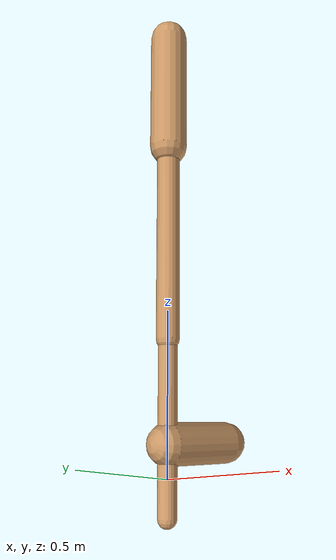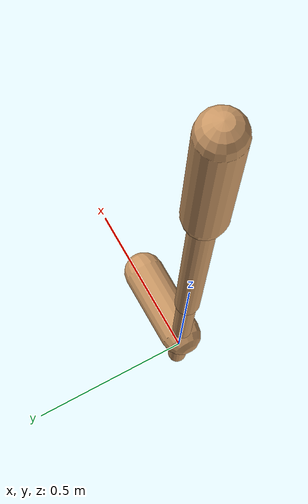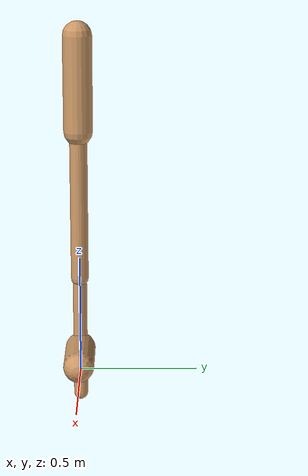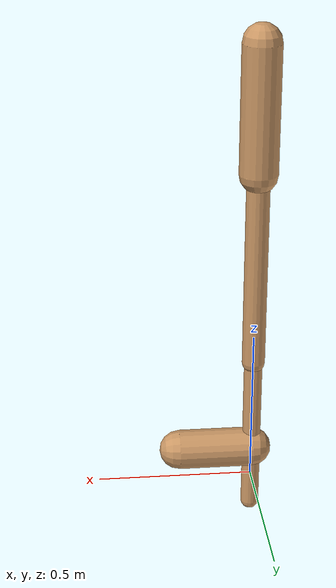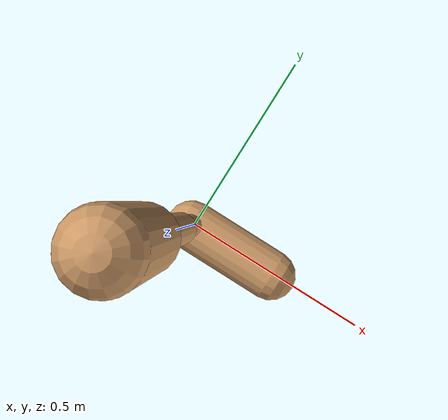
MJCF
<mujoco model="walker2d">
  <compiler angle="degree" coordinate="global" inertiafromgeom="true" />
  <default>
    <joint armature="0.01" damping=".1" limited="true" />
    <geom conaffinity="0" condim="3" contype="1" density="1000" friction="0.8 .1 .1" rgba="0.8 0.6 .4 1" />
  </default>
  <option integrator="RK4" timestep="0.002" />
  <worldbody>

    <body name="torso" pos="0 0 0.3926757774471978">
      <joint armature="0" axis="1 0 0" damping="0" limited="false" name="ignorex" pos="0 0 0" stiffness="0" type="slide" />
      <joint armature="0" axis="0 0 1" damping="0" limited="false" name="ignorez" pos="0 0 0" ref="1.25" stiffness="0" type="slide" />
      <joint armature="0" axis="0 1 0" damping="0" limited="false" name="ignorey" pos="0 0 0" stiffness="0" type="hinge" />
      <geom fromto="0 0 1.45 0 0 1.05" name="torso_geom" size="0.060858961951091264" type="capsule" />
      <body name="thigh">
        <joint axis="0 -1 0" name="thigh_joint" pos="0 0 1.05" range="-150 0" type="hinge" />
        <geom fromto="0.0 0.0 1.05 0.0 0.0 0.41399568436711676" name="thigh_geom" size="0.036962636538411274" type="capsule" />
        <body name="leg" pos="0.0 0.0 -0.18600431563288322">
          <joint axis="0 -1 0" name="leg_joint" pos="0 0 0.6" range="-150 0" type="hinge" />
          <geom fromto="0.0 0.0 0.6 0.0 0.0 -0.10667146181431461" name="leg_geom" size="0.02957010923072902" type="capsule" />
          <body name="foot" pos="0.0 0.0 -0.20667146181431462">
            <joint axis="0 -1 0" name="foot_joint" pos="0 0 0.1" range="-45 45" type="hinge" />
            <geom fromto="-0.0 0.0 0.1 0.23793808316038467 0.0 0.1" name="foot_geom" size="0.06383734710139159" type="capsule" />
          </body>
        </body>
      </body>

      <body name="thigh_left">
        <joint axis="0 -1 0" name="thigh_left_joint" pos="0 0 1.05" range="-150 0" type="hinge" />
        <geom fromto="0.0 0.0 1.05 0.0 0.0 0.41399568436711676" name="thigh_left_geom" rgba=".7 .3 .6 1" size="0.036962636538411274" type="capsule" />
        <body name="leg_left" pos="0.0 0.0 -0.18600431563288322">
          <joint axis="0 -1 0" name="leg_left_joint" pos="0 0 0.6" range="-150 0" type="hinge" />
          <geom fromto="0.0 0.0 0.6 0.0 0.0 -0.10667146181431461" name="leg_left_geom" rgba=".7 .3 .6 1" size="0.02957010923072902" type="capsule" />
          <body name="foot_left" pos="0.0 0.0 -0.20667146181431462">
            <joint axis="0 -1 0" name="foot_left_joint" pos="0 0 0.1" range="-45 45" type="hinge" />
            <geom fromto="-0.0 0.0 0.1 0.23793808316038467 0.0 0.1" name="foot_left_geom" rgba=".7 .3 .6 1" size="0.06383734710139159" type="capsule" />
          </body>
        </body>
      </body>
    </body>
  </worldbody>
  <actuator>

    <motor ctrllimited="true" ctrlrange="-1.0 1.0" gear="100" joint="thigh_joint" />
    <motor ctrllimited="true" ctrlrange="-1.0 1.0" gear="100" joint="leg_joint" />
    <motor ctrllimited="true" ctrlrange="-1.0 1.0" gear="100" joint="foot_joint" />
    <motor ctrllimited="true" ctrlrange="-1.0 1.0" gear="100" joint="thigh_left_joint" />
    <motor ctrllimited="true" ctrlrange="-1.0 1.0" gear="100" joint="leg_left_joint" />
    <motor ctrllimited="true" ctrlrange="-1.0 1.0" gear="100" joint="foot_left_joint" />

  </actuator>
</mujoco>
